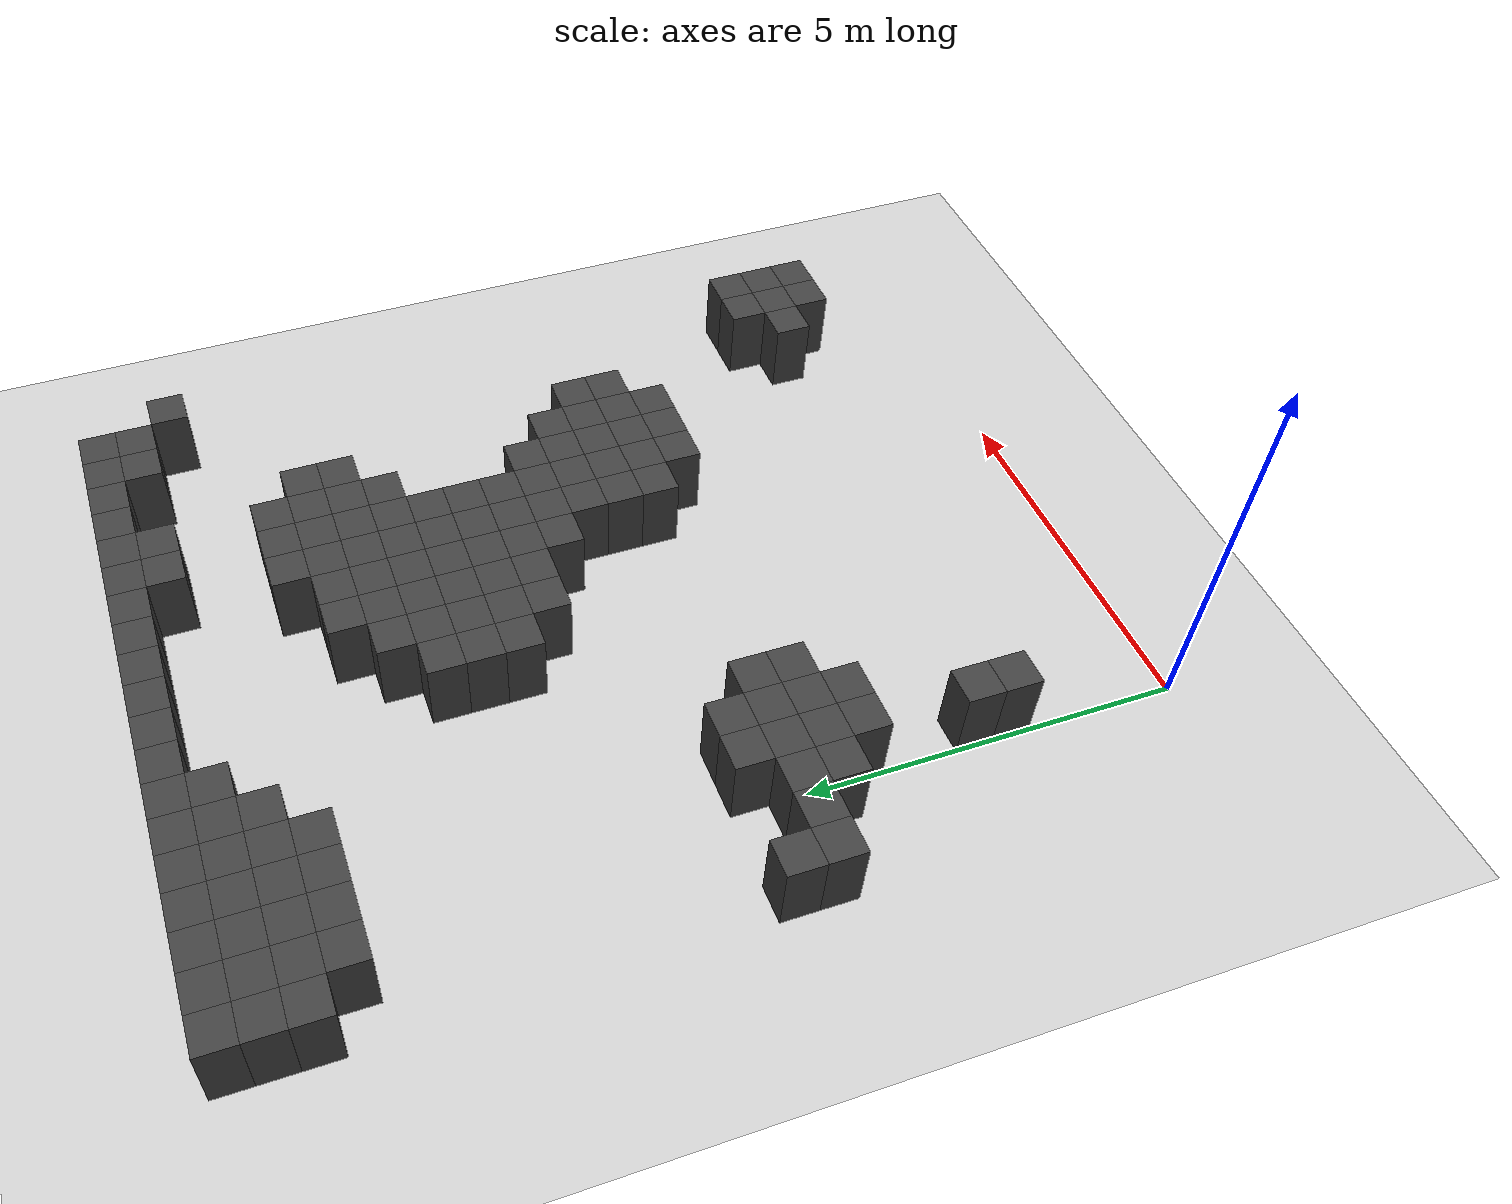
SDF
<sdf version="1.7">
 <world name="map_8658">
  <model name="ground_plane">
   <static>true</static>
   <link name="link">
    <collision name="collision">
     <geometry><plane><normal>0 0 1</normal><size>200 200</size></plane></geometry>
    </collision>
    <visual name="visual">
     <geometry><plane><normal>0 0 1</normal><size>200 200</size></plane></geometry>
     <material><ambient>0.8 0.8 0.8 1</ambient><diffuse>0.8 0.8 0.8 1</diffuse></material>
    </visual>
   </link>
  </model>
  <model name="maze_environment">
   <static>true</static>
   <link name="wall_22">
    <pose>-1.250 12.250 0.500 0 0 0</pose>
    <collision name="col"><geometry><box><size>0.5 0.5 1.0</size></box></geometry></collision>
    <visual name="vis">
     <geometry><box><size>0.5 0.5 1.0</size></box></geometry>
     <material><ambient>0.15 0.15 0.15 1</ambient><diffuse>0.25 0.25 0.25 1</diffuse></material>
    </visual>
   </link>
   <link name="wall_23">
    <pose>-0.750 12.250 0.500 0 0 0</pose>
    <collision name="col"><geometry><box><size>0.5 0.5 1.0</size></box></geometry></collision>
    <visual name="vis">
     <geometry><box><size>0.5 0.5 1.0</size></box></geometry>
     <material><ambient>0.15 0.15 0.15 1</ambient><diffuse>0.25 0.25 0.25 1</diffuse></material>
    </visual>
   </link>
   <link name="wall_24">
    <pose>-0.250 12.250 0.500 0 0 0</pose>
    <collision name="col"><geometry><box><size>0.5 0.5 1.0</size></box></geometry></collision>
    <visual name="vis">
     <geometry><box><size>0.5 0.5 1.0</size></box></geometry>
     <material><ambient>0.15 0.15 0.15 1</ambient><diffuse>0.25 0.25 0.25 1</diffuse></material>
    </visual>
   </link>
   <link name="wall_25">
    <pose>0.250 12.250 0.500 0 0 0</pose>
    <collision name="col"><geometry><box><size>0.5 0.5 1.0</size></box></geometry></collision>
    <visual name="vis">
     <geometry><box><size>0.5 0.5 1.0</size></box></geometry>
     <material><ambient>0.15 0.15 0.15 1</ambient><diffuse>0.25 0.25 0.25 1</diffuse></material>
    </visual>
   </link>
   <link name="wall_26">
    <pose>0.750 12.250 0.500 0 0 0</pose>
    <collision name="col"><geometry><box><size>0.5 0.5 1.0</size></box></geometry></collision>
    <visual name="vis">
     <geometry><box><size>0.5 0.5 1.0</size></box></geometry>
     <material><ambient>0.15 0.15 0.15 1</ambient><diffuse>0.25 0.25 0.25 1</diffuse></material>
    </visual>
   </link>
   <link name="wall_27">
    <pose>1.250 12.250 0.500 0 0 0</pose>
    <collision name="col"><geometry><box><size>0.5 0.5 1.0</size></box></geometry></collision>
    <visual name="vis">
     <geometry><box><size>0.5 0.5 1.0</size></box></geometry>
     <material><ambient>0.15 0.15 0.15 1</ambient><diffuse>0.25 0.25 0.25 1</diffuse></material>
    </visual>
   </link>
   <link name="wall_28">
    <pose>1.750 12.250 0.500 0 0 0</pose>
    <collision name="col"><geometry><box><size>0.5 0.5 1.0</size></box></geometry></collision>
    <visual name="vis">
     <geometry><box><size>0.5 0.5 1.0</size></box></geometry>
     <material><ambient>0.15 0.15 0.15 1</ambient><diffuse>0.25 0.25 0.25 1</diffuse></material>
    </visual>
   </link>
   <link name="wall_29">
    <pose>2.250 12.250 0.500 0 0 0</pose>
    <collision name="col"><geometry><box><size>0.5 0.5 1.0</size></box></geometry></collision>
    <visual name="vis">
     <geometry><box><size>0.5 0.5 1.0</size></box></geometry>
     <material><ambient>0.15 0.15 0.15 1</ambient><diffuse>0.25 0.25 0.25 1</diffuse></material>
    </visual>
   </link>
   <link name="wall_30">
    <pose>2.750 12.250 0.500 0 0 0</pose>
    <collision name="col"><geometry><box><size>0.5 0.5 1.0</size></box></geometry></collision>
    <visual name="vis">
     <geometry><box><size>0.5 0.5 1.0</size></box></geometry>
     <material><ambient>0.15 0.15 0.15 1</ambient><diffuse>0.25 0.25 0.25 1</diffuse></material>
    </visual>
   </link>
   <link name="wall_31">
    <pose>3.250 12.250 0.500 0 0 0</pose>
    <collision name="col"><geometry><box><size>0.5 0.5 1.0</size></box></geometry></collision>
    <visual name="vis">
     <geometry><box><size>0.5 0.5 1.0</size></box></geometry>
     <material><ambient>0.15 0.15 0.15 1</ambient><diffuse>0.25 0.25 0.25 1</diffuse></material>
    </visual>
   </link>
   <link name="wall_32">
    <pose>3.750 12.250 0.500 0 0 0</pose>
    <collision name="col"><geometry><box><size>0.5 0.5 1.0</size></box></geometry></collision>
    <visual name="vis">
     <geometry><box><size>0.5 0.5 1.0</size></box></geometry>
     <material><ambient>0.15 0.15 0.15 1</ambient><diffuse>0.25 0.25 0.25 1</diffuse></material>
    </visual>
   </link>
   <link name="wall_33">
    <pose>4.250 12.250 0.500 0 0 0</pose>
    <collision name="col"><geometry><box><size>0.5 0.5 1.0</size></box></geometry></collision>
    <visual name="vis">
     <geometry><box><size>0.5 0.5 1.0</size></box></geometry>
     <material><ambient>0.15 0.15 0.15 1</ambient><diffuse>0.25 0.25 0.25 1</diffuse></material>
    </visual>
   </link>
   <link name="wall_34">
    <pose>4.750 12.250 0.500 0 0 0</pose>
    <collision name="col"><geometry><box><size>0.5 0.5 1.0</size></box></geometry></collision>
    <visual name="vis">
     <geometry><box><size>0.5 0.5 1.0</size></box></geometry>
     <material><ambient>0.15 0.15 0.15 1</ambient><diffuse>0.25 0.25 0.25 1</diffuse></material>
    </visual>
   </link>
   <link name="wall_35">
    <pose>5.250 12.250 0.500 0 0 0</pose>
    <collision name="col"><geometry><box><size>0.5 0.5 1.0</size></box></geometry></collision>
    <visual name="vis">
     <geometry><box><size>0.5 0.5 1.0</size></box></geometry>
     <material><ambient>0.15 0.15 0.15 1</ambient><diffuse>0.25 0.25 0.25 1</diffuse></material>
    </visual>
   </link>
   <link name="wall_36">
    <pose>5.750 12.250 0.500 0 0 0</pose>
    <collision name="col"><geometry><box><size>0.5 0.5 1.0</size></box></geometry></collision>
    <visual name="vis">
     <geometry><box><size>0.5 0.5 1.0</size></box></geometry>
     <material><ambient>0.15 0.15 0.15 1</ambient><diffuse>0.25 0.25 0.25 1</diffuse></material>
    </visual>
   </link>
   <link name="wall_37">
    <pose>6.250 12.250 0.500 0 0 0</pose>
    <collision name="col"><geometry><box><size>0.5 0.5 1.0</size></box></geometry></collision>
    <visual name="vis">
     <geometry><box><size>0.5 0.5 1.0</size></box></geometry>
     <material><ambient>0.15 0.15 0.15 1</ambient><diffuse>0.25 0.25 0.25 1</diffuse></material>
    </visual>
   </link>
   <link name="wall_38">
    <pose>6.750 12.250 0.500 0 0 0</pose>
    <collision name="col"><geometry><box><size>0.5 0.5 1.0</size></box></geometry></collision>
    <visual name="vis">
     <geometry><box><size>0.5 0.5 1.0</size></box></geometry>
     <material><ambient>0.15 0.15 0.15 1</ambient><diffuse>0.25 0.25 0.25 1</diffuse></material>
    </visual>
   </link>
   <link name="wall_39">
    <pose>7.250 12.250 0.500 0 0 0</pose>
    <collision name="col"><geometry><box><size>0.5 0.5 1.0</size></box></geometry></collision>
    <visual name="vis">
     <geometry><box><size>0.5 0.5 1.0</size></box></geometry>
     <material><ambient>0.15 0.15 0.15 1</ambient><diffuse>0.25 0.25 0.25 1</diffuse></material>
    </visual>
   </link>
   <link name="wall_40">
    <pose>7.750 12.250 0.500 0 0 0</pose>
    <collision name="col"><geometry><box><size>0.5 0.5 1.0</size></box></geometry></collision>
    <visual name="vis">
     <geometry><box><size>0.5 0.5 1.0</size></box></geometry>
     <material><ambient>0.15 0.15 0.15 1</ambient><diffuse>0.25 0.25 0.25 1</diffuse></material>
    </visual>
   </link>
   <link name="wall_63">
    <pose>-1.250 11.750 0.500 0 0 0</pose>
    <collision name="col"><geometry><box><size>0.5 0.5 1.0</size></box></geometry></collision>
    <visual name="vis">
     <geometry><box><size>0.5 0.5 1.0</size></box></geometry>
     <material><ambient>0.15 0.15 0.15 1</ambient><diffuse>0.25 0.25 0.25 1</diffuse></material>
    </visual>
   </link>
   <link name="wall_64">
    <pose>-0.750 11.750 0.500 0 0 0</pose>
    <collision name="col"><geometry><box><size>0.5 0.5 1.0</size></box></geometry></collision>
    <visual name="vis">
     <geometry><box><size>0.5 0.5 1.0</size></box></geometry>
     <material><ambient>0.15 0.15 0.15 1</ambient><diffuse>0.25 0.25 0.25 1</diffuse></material>
    </visual>
   </link>
   <link name="wall_65">
    <pose>-0.250 11.750 0.500 0 0 0</pose>
    <collision name="col"><geometry><box><size>0.5 0.5 1.0</size></box></geometry></collision>
    <visual name="vis">
     <geometry><box><size>0.5 0.5 1.0</size></box></geometry>
     <material><ambient>0.15 0.15 0.15 1</ambient><diffuse>0.25 0.25 0.25 1</diffuse></material>
    </visual>
   </link>
   <link name="wall_66">
    <pose>0.250 11.750 0.500 0 0 0</pose>
    <collision name="col"><geometry><box><size>0.5 0.5 1.0</size></box></geometry></collision>
    <visual name="vis">
     <geometry><box><size>0.5 0.5 1.0</size></box></geometry>
     <material><ambient>0.15 0.15 0.15 1</ambient><diffuse>0.25 0.25 0.25 1</diffuse></material>
    </visual>
   </link>
   <link name="wall_67">
    <pose>0.750 11.750 0.500 0 0 0</pose>
    <collision name="col"><geometry><box><size>0.5 0.5 1.0</size></box></geometry></collision>
    <visual name="vis">
     <geometry><box><size>0.5 0.5 1.0</size></box></geometry>
     <material><ambient>0.15 0.15 0.15 1</ambient><diffuse>0.25 0.25 0.25 1</diffuse></material>
    </visual>
   </link>
   <link name="wall_68">
    <pose>1.250 11.750 0.500 0 0 0</pose>
    <collision name="col"><geometry><box><size>0.5 0.5 1.0</size></box></geometry></collision>
    <visual name="vis">
     <geometry><box><size>0.5 0.5 1.0</size></box></geometry>
     <material><ambient>0.15 0.15 0.15 1</ambient><diffuse>0.25 0.25 0.25 1</diffuse></material>
    </visual>
   </link>
   <link name="wall_69">
    <pose>1.750 11.750 0.500 0 0 0</pose>
    <collision name="col"><geometry><box><size>0.5 0.5 1.0</size></box></geometry></collision>
    <visual name="vis">
     <geometry><box><size>0.5 0.5 1.0</size></box></geometry>
     <material><ambient>0.15 0.15 0.15 1</ambient><diffuse>0.25 0.25 0.25 1</diffuse></material>
    </visual>
   </link>
   <link name="wall_70">
    <pose>5.250 11.750 0.500 0 0 0</pose>
    <collision name="col"><geometry><box><size>0.5 0.5 1.0</size></box></geometry></collision>
    <visual name="vis">
     <geometry><box><size>0.5 0.5 1.0</size></box></geometry>
     <material><ambient>0.15 0.15 0.15 1</ambient><diffuse>0.25 0.25 0.25 1</diffuse></material>
    </visual>
   </link>
   <link name="wall_71">
    <pose>5.750 11.750 0.500 0 0 0</pose>
    <collision name="col"><geometry><box><size>0.5 0.5 1.0</size></box></geometry></collision>
    <visual name="vis">
     <geometry><box><size>0.5 0.5 1.0</size></box></geometry>
     <material><ambient>0.15 0.15 0.15 1</ambient><diffuse>0.25 0.25 0.25 1</diffuse></material>
    </visual>
   </link>
   <link name="wall_72">
    <pose>7.250 11.750 0.500 0 0 0</pose>
    <collision name="col"><geometry><box><size>0.5 0.5 1.0</size></box></geometry></collision>
    <visual name="vis">
     <geometry><box><size>0.5 0.5 1.0</size></box></geometry>
     <material><ambient>0.15 0.15 0.15 1</ambient><diffuse>0.25 0.25 0.25 1</diffuse></material>
    </visual>
   </link>
   <link name="wall_73">
    <pose>7.750 11.750 0.500 0 0 0</pose>
    <collision name="col"><geometry><box><size>0.5 0.5 1.0</size></box></geometry></collision>
    <visual name="vis">
     <geometry><box><size>0.5 0.5 1.0</size></box></geometry>
     <material><ambient>0.15 0.15 0.15 1</ambient><diffuse>0.25 0.25 0.25 1</diffuse></material>
    </visual>
   </link>
   <link name="wall_91">
    <pose>-1.250 11.250 0.500 0 0 0</pose>
    <collision name="col"><geometry><box><size>0.5 0.5 1.0</size></box></geometry></collision>
    <visual name="vis">
     <geometry><box><size>0.5 0.5 1.0</size></box></geometry>
     <material><ambient>0.15 0.15 0.15 1</ambient><diffuse>0.25 0.25 0.25 1</diffuse></material>
    </visual>
   </link>
   <link name="wall_92">
    <pose>-0.750 11.250 0.500 0 0 0</pose>
    <collision name="col"><geometry><box><size>0.5 0.5 1.0</size></box></geometry></collision>
    <visual name="vis">
     <geometry><box><size>0.5 0.5 1.0</size></box></geometry>
     <material><ambient>0.15 0.15 0.15 1</ambient><diffuse>0.25 0.25 0.25 1</diffuse></material>
    </visual>
   </link>
   <link name="wall_93">
    <pose>-0.250 11.250 0.500 0 0 0</pose>
    <collision name="col"><geometry><box><size>0.5 0.5 1.0</size></box></geometry></collision>
    <visual name="vis">
     <geometry><box><size>0.5 0.5 1.0</size></box></geometry>
     <material><ambient>0.15 0.15 0.15 1</ambient><diffuse>0.25 0.25 0.25 1</diffuse></material>
    </visual>
   </link>
   <link name="wall_94">
    <pose>0.250 11.250 0.500 0 0 0</pose>
    <collision name="col"><geometry><box><size>0.5 0.5 1.0</size></box></geometry></collision>
    <visual name="vis">
     <geometry><box><size>0.5 0.5 1.0</size></box></geometry>
     <material><ambient>0.15 0.15 0.15 1</ambient><diffuse>0.25 0.25 0.25 1</diffuse></material>
    </visual>
   </link>
   <link name="wall_95">
    <pose>0.750 11.250 0.500 0 0 0</pose>
    <collision name="col"><geometry><box><size>0.5 0.5 1.0</size></box></geometry></collision>
    <visual name="vis">
     <geometry><box><size>0.5 0.5 1.0</size></box></geometry>
     <material><ambient>0.15 0.15 0.15 1</ambient><diffuse>0.25 0.25 0.25 1</diffuse></material>
    </visual>
   </link>
   <link name="wall_96">
    <pose>1.250 11.250 0.500 0 0 0</pose>
    <collision name="col"><geometry><box><size>0.5 0.5 1.0</size></box></geometry></collision>
    <visual name="vis">
     <geometry><box><size>0.5 0.5 1.0</size></box></geometry>
     <material><ambient>0.15 0.15 0.15 1</ambient><diffuse>0.25 0.25 0.25 1</diffuse></material>
    </visual>
   </link>
   <link name="wall_97">
    <pose>8.250 11.250 0.500 0 0 0</pose>
    <collision name="col"><geometry><box><size>0.5 0.5 1.0</size></box></geometry></collision>
    <visual name="vis">
     <geometry><box><size>0.5 0.5 1.0</size></box></geometry>
     <material><ambient>0.15 0.15 0.15 1</ambient><diffuse>0.25 0.25 0.25 1</diffuse></material>
    </visual>
   </link>
   <link name="wall_111">
    <pose>-0.750 10.750 0.500 0 0 0</pose>
    <collision name="col"><geometry><box><size>0.5 0.5 1.0</size></box></geometry></collision>
    <visual name="vis">
     <geometry><box><size>0.5 0.5 1.0</size></box></geometry>
     <material><ambient>0.15 0.15 0.15 1</ambient><diffuse>0.25 0.25 0.25 1</diffuse></material>
    </visual>
   </link>
   <link name="wall_112">
    <pose>-0.250 10.750 0.500 0 0 0</pose>
    <collision name="col"><geometry><box><size>0.5 0.5 1.0</size></box></geometry></collision>
    <visual name="vis">
     <geometry><box><size>0.5 0.5 1.0</size></box></geometry>
     <material><ambient>0.15 0.15 0.15 1</ambient><diffuse>0.25 0.25 0.25 1</diffuse></material>
    </visual>
   </link>
   <link name="wall_113">
    <pose>0.250 10.750 0.500 0 0 0</pose>
    <collision name="col"><geometry><box><size>0.5 0.5 1.0</size></box></geometry></collision>
    <visual name="vis">
     <geometry><box><size>0.5 0.5 1.0</size></box></geometry>
     <material><ambient>0.15 0.15 0.15 1</ambient><diffuse>0.25 0.25 0.25 1</diffuse></material>
    </visual>
   </link>
   <link name="wall_114">
    <pose>0.750 10.750 0.500 0 0 0</pose>
    <collision name="col"><geometry><box><size>0.5 0.5 1.0</size></box></geometry></collision>
    <visual name="vis">
     <geometry><box><size>0.5 0.5 1.0</size></box></geometry>
     <material><ambient>0.15 0.15 0.15 1</ambient><diffuse>0.25 0.25 0.25 1</diffuse></material>
    </visual>
   </link>
   <link name="wall_126">
    <pose>4.750 10.250 0.500 0 0 0</pose>
    <collision name="col"><geometry><box><size>0.5 0.5 1.0</size></box></geometry></collision>
    <visual name="vis">
     <geometry><box><size>0.5 0.5 1.0</size></box></geometry>
     <material><ambient>0.15 0.15 0.15 1</ambient><diffuse>0.25 0.25 0.25 1</diffuse></material>
    </visual>
   </link>
   <link name="wall_127">
    <pose>5.250 10.250 0.500 0 0 0</pose>
    <collision name="col"><geometry><box><size>0.5 0.5 1.0</size></box></geometry></collision>
    <visual name="vis">
     <geometry><box><size>0.5 0.5 1.0</size></box></geometry>
     <material><ambient>0.15 0.15 0.15 1</ambient><diffuse>0.25 0.25 0.25 1</diffuse></material>
    </visual>
   </link>
   <link name="wall_128">
    <pose>5.750 10.250 0.500 0 0 0</pose>
    <collision name="col"><geometry><box><size>0.5 0.5 1.0</size></box></geometry></collision>
    <visual name="vis">
     <geometry><box><size>0.5 0.5 1.0</size></box></geometry>
     <material><ambient>0.15 0.15 0.15 1</ambient><diffuse>0.25 0.25 0.25 1</diffuse></material>
    </visual>
   </link>
   <link name="wall_139">
    <pose>3.750 9.750 0.500 0 0 0</pose>
    <collision name="col"><geometry><box><size>0.5 0.5 1.0</size></box></geometry></collision>
    <visual name="vis">
     <geometry><box><size>0.5 0.5 1.0</size></box></geometry>
     <material><ambient>0.15 0.15 0.15 1</ambient><diffuse>0.25 0.25 0.25 1</diffuse></material>
    </visual>
   </link>
   <link name="wall_140">
    <pose>4.250 9.750 0.500 0 0 0</pose>
    <collision name="col"><geometry><box><size>0.5 0.5 1.0</size></box></geometry></collision>
    <visual name="vis">
     <geometry><box><size>0.5 0.5 1.0</size></box></geometry>
     <material><ambient>0.15 0.15 0.15 1</ambient><diffuse>0.25 0.25 0.25 1</diffuse></material>
    </visual>
   </link>
   <link name="wall_141">
    <pose>4.750 9.750 0.500 0 0 0</pose>
    <collision name="col"><geometry><box><size>0.5 0.5 1.0</size></box></geometry></collision>
    <visual name="vis">
     <geometry><box><size>0.5 0.5 1.0</size></box></geometry>
     <material><ambient>0.15 0.15 0.15 1</ambient><diffuse>0.25 0.25 0.25 1</diffuse></material>
    </visual>
   </link>
   <link name="wall_142">
    <pose>5.250 9.750 0.500 0 0 0</pose>
    <collision name="col"><geometry><box><size>0.5 0.5 1.0</size></box></geometry></collision>
    <visual name="vis">
     <geometry><box><size>0.5 0.5 1.0</size></box></geometry>
     <material><ambient>0.15 0.15 0.15 1</ambient><diffuse>0.25 0.25 0.25 1</diffuse></material>
    </visual>
   </link>
   <link name="wall_143">
    <pose>5.750 9.750 0.500 0 0 0</pose>
    <collision name="col"><geometry><box><size>0.5 0.5 1.0</size></box></geometry></collision>
    <visual name="vis">
     <geometry><box><size>0.5 0.5 1.0</size></box></geometry>
     <material><ambient>0.15 0.15 0.15 1</ambient><diffuse>0.25 0.25 0.25 1</diffuse></material>
    </visual>
   </link>
   <link name="wall_144">
    <pose>6.250 9.750 0.500 0 0 0</pose>
    <collision name="col"><geometry><box><size>0.5 0.5 1.0</size></box></geometry></collision>
    <visual name="vis">
     <geometry><box><size>0.5 0.5 1.0</size></box></geometry>
     <material><ambient>0.15 0.15 0.15 1</ambient><diffuse>0.25 0.25 0.25 1</diffuse></material>
    </visual>
   </link>
   <link name="wall_158">
    <pose>3.250 9.250 0.500 0 0 0</pose>
    <collision name="col"><geometry><box><size>0.5 0.5 1.0</size></box></geometry></collision>
    <visual name="vis">
     <geometry><box><size>0.5 0.5 1.0</size></box></geometry>
     <material><ambient>0.15 0.15 0.15 1</ambient><diffuse>0.25 0.25 0.25 1</diffuse></material>
    </visual>
   </link>
   <link name="wall_159">
    <pose>3.750 9.250 0.500 0 0 0</pose>
    <collision name="col"><geometry><box><size>0.5 0.5 1.0</size></box></geometry></collision>
    <visual name="vis">
     <geometry><box><size>0.5 0.5 1.0</size></box></geometry>
     <material><ambient>0.15 0.15 0.15 1</ambient><diffuse>0.25 0.25 0.25 1</diffuse></material>
    </visual>
   </link>
   <link name="wall_160">
    <pose>4.250 9.250 0.500 0 0 0</pose>
    <collision name="col"><geometry><box><size>0.5 0.5 1.0</size></box></geometry></collision>
    <visual name="vis">
     <geometry><box><size>0.5 0.5 1.0</size></box></geometry>
     <material><ambient>0.15 0.15 0.15 1</ambient><diffuse>0.25 0.25 0.25 1</diffuse></material>
    </visual>
   </link>
   <link name="wall_161">
    <pose>4.750 9.250 0.500 0 0 0</pose>
    <collision name="col"><geometry><box><size>0.5 0.5 1.0</size></box></geometry></collision>
    <visual name="vis">
     <geometry><box><size>0.5 0.5 1.0</size></box></geometry>
     <material><ambient>0.15 0.15 0.15 1</ambient><diffuse>0.25 0.25 0.25 1</diffuse></material>
    </visual>
   </link>
   <link name="wall_162">
    <pose>5.250 9.250 0.500 0 0 0</pose>
    <collision name="col"><geometry><box><size>0.5 0.5 1.0</size></box></geometry></collision>
    <visual name="vis">
     <geometry><box><size>0.5 0.5 1.0</size></box></geometry>
     <material><ambient>0.15 0.15 0.15 1</ambient><diffuse>0.25 0.25 0.25 1</diffuse></material>
    </visual>
   </link>
   <link name="wall_163">
    <pose>5.750 9.250 0.500 0 0 0</pose>
    <collision name="col"><geometry><box><size>0.5 0.5 1.0</size></box></geometry></collision>
    <visual name="vis">
     <geometry><box><size>0.5 0.5 1.0</size></box></geometry>
     <material><ambient>0.15 0.15 0.15 1</ambient><diffuse>0.25 0.25 0.25 1</diffuse></material>
    </visual>
   </link>
   <link name="wall_164">
    <pose>6.250 9.250 0.500 0 0 0</pose>
    <collision name="col"><geometry><box><size>0.5 0.5 1.0</size></box></geometry></collision>
    <visual name="vis">
     <geometry><box><size>0.5 0.5 1.0</size></box></geometry>
     <material><ambient>0.15 0.15 0.15 1</ambient><diffuse>0.25 0.25 0.25 1</diffuse></material>
    </visual>
   </link>
   <link name="wall_177">
    <pose>2.750 8.750 0.500 0 0 0</pose>
    <collision name="col"><geometry><box><size>0.5 0.5 1.0</size></box></geometry></collision>
    <visual name="vis">
     <geometry><box><size>0.5 0.5 1.0</size></box></geometry>
     <material><ambient>0.15 0.15 0.15 1</ambient><diffuse>0.25 0.25 0.25 1</diffuse></material>
    </visual>
   </link>
   <link name="wall_178">
    <pose>3.250 8.750 0.500 0 0 0</pose>
    <collision name="col"><geometry><box><size>0.5 0.5 1.0</size></box></geometry></collision>
    <visual name="vis">
     <geometry><box><size>0.5 0.5 1.0</size></box></geometry>
     <material><ambient>0.15 0.15 0.15 1</ambient><diffuse>0.25 0.25 0.25 1</diffuse></material>
    </visual>
   </link>
   <link name="wall_179">
    <pose>3.750 8.750 0.500 0 0 0</pose>
    <collision name="col"><geometry><box><size>0.5 0.5 1.0</size></box></geometry></collision>
    <visual name="vis">
     <geometry><box><size>0.5 0.5 1.0</size></box></geometry>
     <material><ambient>0.15 0.15 0.15 1</ambient><diffuse>0.25 0.25 0.25 1</diffuse></material>
    </visual>
   </link>
   <link name="wall_180">
    <pose>4.250 8.750 0.500 0 0 0</pose>
    <collision name="col"><geometry><box><size>0.5 0.5 1.0</size></box></geometry></collision>
    <visual name="vis">
     <geometry><box><size>0.5 0.5 1.0</size></box></geometry>
     <material><ambient>0.15 0.15 0.15 1</ambient><diffuse>0.25 0.25 0.25 1</diffuse></material>
    </visual>
   </link>
   <link name="wall_181">
    <pose>4.750 8.750 0.500 0 0 0</pose>
    <collision name="col"><geometry><box><size>0.5 0.5 1.0</size></box></geometry></collision>
    <visual name="vis">
     <geometry><box><size>0.5 0.5 1.0</size></box></geometry>
     <material><ambient>0.15 0.15 0.15 1</ambient><diffuse>0.25 0.25 0.25 1</diffuse></material>
    </visual>
   </link>
   <link name="wall_182">
    <pose>5.250 8.750 0.500 0 0 0</pose>
    <collision name="col"><geometry><box><size>0.5 0.5 1.0</size></box></geometry></collision>
    <visual name="vis">
     <geometry><box><size>0.5 0.5 1.0</size></box></geometry>
     <material><ambient>0.15 0.15 0.15 1</ambient><diffuse>0.25 0.25 0.25 1</diffuse></material>
    </visual>
   </link>
   <link name="wall_183">
    <pose>5.750 8.750 0.500 0 0 0</pose>
    <collision name="col"><geometry><box><size>0.5 0.5 1.0</size></box></geometry></collision>
    <visual name="vis">
     <geometry><box><size>0.5 0.5 1.0</size></box></geometry>
     <material><ambient>0.15 0.15 0.15 1</ambient><diffuse>0.25 0.25 0.25 1</diffuse></material>
    </visual>
   </link>
   <link name="wall_200">
    <pose>2.750 8.250 0.500 0 0 0</pose>
    <collision name="col"><geometry><box><size>0.5 0.5 1.0</size></box></geometry></collision>
    <visual name="vis">
     <geometry><box><size>0.5 0.5 1.0</size></box></geometry>
     <material><ambient>0.15 0.15 0.15 1</ambient><diffuse>0.25 0.25 0.25 1</diffuse></material>
    </visual>
   </link>
   <link name="wall_201">
    <pose>3.250 8.250 0.500 0 0 0</pose>
    <collision name="col"><geometry><box><size>0.5 0.5 1.0</size></box></geometry></collision>
    <visual name="vis">
     <geometry><box><size>0.5 0.5 1.0</size></box></geometry>
     <material><ambient>0.15 0.15 0.15 1</ambient><diffuse>0.25 0.25 0.25 1</diffuse></material>
    </visual>
   </link>
   <link name="wall_202">
    <pose>3.750 8.250 0.500 0 0 0</pose>
    <collision name="col"><geometry><box><size>0.5 0.5 1.0</size></box></geometry></collision>
    <visual name="vis">
     <geometry><box><size>0.5 0.5 1.0</size></box></geometry>
     <material><ambient>0.15 0.15 0.15 1</ambient><diffuse>0.25 0.25 0.25 1</diffuse></material>
    </visual>
   </link>
   <link name="wall_203">
    <pose>4.250 8.250 0.500 0 0 0</pose>
    <collision name="col"><geometry><box><size>0.5 0.5 1.0</size></box></geometry></collision>
    <visual name="vis">
     <geometry><box><size>0.5 0.5 1.0</size></box></geometry>
     <material><ambient>0.15 0.15 0.15 1</ambient><diffuse>0.25 0.25 0.25 1</diffuse></material>
    </visual>
   </link>
   <link name="wall_204">
    <pose>4.750 8.250 0.500 0 0 0</pose>
    <collision name="col"><geometry><box><size>0.5 0.5 1.0</size></box></geometry></collision>
    <visual name="vis">
     <geometry><box><size>0.5 0.5 1.0</size></box></geometry>
     <material><ambient>0.15 0.15 0.15 1</ambient><diffuse>0.25 0.25 0.25 1</diffuse></material>
    </visual>
   </link>
   <link name="wall_205">
    <pose>5.250 8.250 0.500 0 0 0</pose>
    <collision name="col"><geometry><box><size>0.5 0.5 1.0</size></box></geometry></collision>
    <visual name="vis">
     <geometry><box><size>0.5 0.5 1.0</size></box></geometry>
     <material><ambient>0.15 0.15 0.15 1</ambient><diffuse>0.25 0.25 0.25 1</diffuse></material>
    </visual>
   </link>
   <link name="wall_222">
    <pose>2.750 7.750 0.500 0 0 0</pose>
    <collision name="col"><geometry><box><size>0.5 0.5 1.0</size></box></geometry></collision>
    <visual name="vis">
     <geometry><box><size>0.5 0.5 1.0</size></box></geometry>
     <material><ambient>0.15 0.15 0.15 1</ambient><diffuse>0.25 0.25 0.25 1</diffuse></material>
    </visual>
   </link>
   <link name="wall_223">
    <pose>3.250 7.750 0.500 0 0 0</pose>
    <collision name="col"><geometry><box><size>0.5 0.5 1.0</size></box></geometry></collision>
    <visual name="vis">
     <geometry><box><size>0.5 0.5 1.0</size></box></geometry>
     <material><ambient>0.15 0.15 0.15 1</ambient><diffuse>0.25 0.25 0.25 1</diffuse></material>
    </visual>
   </link>
   <link name="wall_224">
    <pose>3.750 7.750 0.500 0 0 0</pose>
    <collision name="col"><geometry><box><size>0.5 0.5 1.0</size></box></geometry></collision>
    <visual name="vis">
     <geometry><box><size>0.5 0.5 1.0</size></box></geometry>
     <material><ambient>0.15 0.15 0.15 1</ambient><diffuse>0.25 0.25 0.25 1</diffuse></material>
    </visual>
   </link>
   <link name="wall_225">
    <pose>4.250 7.750 0.500 0 0 0</pose>
    <collision name="col"><geometry><box><size>0.5 0.5 1.0</size></box></geometry></collision>
    <visual name="vis">
     <geometry><box><size>0.5 0.5 1.0</size></box></geometry>
     <material><ambient>0.15 0.15 0.15 1</ambient><diffuse>0.25 0.25 0.25 1</diffuse></material>
    </visual>
   </link>
   <link name="wall_226">
    <pose>4.750 7.750 0.500 0 0 0</pose>
    <collision name="col"><geometry><box><size>0.5 0.5 1.0</size></box></geometry></collision>
    <visual name="vis">
     <geometry><box><size>0.5 0.5 1.0</size></box></geometry>
     <material><ambient>0.15 0.15 0.15 1</ambient><diffuse>0.25 0.25 0.25 1</diffuse></material>
    </visual>
   </link>
   <link name="wall_227">
    <pose>5.250 7.750 0.500 0 0 0</pose>
    <collision name="col"><geometry><box><size>0.5 0.5 1.0</size></box></geometry></collision>
    <visual name="vis">
     <geometry><box><size>0.5 0.5 1.0</size></box></geometry>
     <material><ambient>0.15 0.15 0.15 1</ambient><diffuse>0.25 0.25 0.25 1</diffuse></material>
    </visual>
   </link>
   <link name="wall_243">
    <pose>3.250 7.250 0.500 0 0 0</pose>
    <collision name="col"><geometry><box><size>0.5 0.5 1.0</size></box></geometry></collision>
    <visual name="vis">
     <geometry><box><size>0.5 0.5 1.0</size></box></geometry>
     <material><ambient>0.15 0.15 0.15 1</ambient><diffuse>0.25 0.25 0.25 1</diffuse></material>
    </visual>
   </link>
   <link name="wall_244">
    <pose>3.750 7.250 0.500 0 0 0</pose>
    <collision name="col"><geometry><box><size>0.5 0.5 1.0</size></box></geometry></collision>
    <visual name="vis">
     <geometry><box><size>0.5 0.5 1.0</size></box></geometry>
     <material><ambient>0.15 0.15 0.15 1</ambient><diffuse>0.25 0.25 0.25 1</diffuse></material>
    </visual>
   </link>
   <link name="wall_245">
    <pose>4.250 7.250 0.500 0 0 0</pose>
    <collision name="col"><geometry><box><size>0.5 0.5 1.0</size></box></geometry></collision>
    <visual name="vis">
     <geometry><box><size>0.5 0.5 1.0</size></box></geometry>
     <material><ambient>0.15 0.15 0.15 1</ambient><diffuse>0.25 0.25 0.25 1</diffuse></material>
    </visual>
   </link>
   <link name="wall_246">
    <pose>4.750 7.250 0.500 0 0 0</pose>
    <collision name="col"><geometry><box><size>0.5 0.5 1.0</size></box></geometry></collision>
    <visual name="vis">
     <geometry><box><size>0.5 0.5 1.0</size></box></geometry>
     <material><ambient>0.15 0.15 0.15 1</ambient><diffuse>0.25 0.25 0.25 1</diffuse></material>
    </visual>
   </link>
   <link name="wall_247">
    <pose>5.250 7.250 0.500 0 0 0</pose>
    <collision name="col"><geometry><box><size>0.5 0.5 1.0</size></box></geometry></collision>
    <visual name="vis">
     <geometry><box><size>0.5 0.5 1.0</size></box></geometry>
     <material><ambient>0.15 0.15 0.15 1</ambient><diffuse>0.25 0.25 0.25 1</diffuse></material>
    </visual>
   </link>
   <link name="wall_260">
    <pose>4.250 6.750 0.500 0 0 0</pose>
    <collision name="col"><geometry><box><size>0.5 0.5 1.0</size></box></geometry></collision>
    <visual name="vis">
     <geometry><box><size>0.5 0.5 1.0</size></box></geometry>
     <material><ambient>0.15 0.15 0.15 1</ambient><diffuse>0.25 0.25 0.25 1</diffuse></material>
    </visual>
   </link>
   <link name="wall_261">
    <pose>4.750 6.750 0.500 0 0 0</pose>
    <collision name="col"><geometry><box><size>0.5 0.5 1.0</size></box></geometry></collision>
    <visual name="vis">
     <geometry><box><size>0.5 0.5 1.0</size></box></geometry>
     <material><ambient>0.15 0.15 0.15 1</ambient><diffuse>0.25 0.25 0.25 1</diffuse></material>
    </visual>
   </link>
   <link name="wall_262">
    <pose>5.250 6.750 0.500 0 0 0</pose>
    <collision name="col"><geometry><box><size>0.5 0.5 1.0</size></box></geometry></collision>
    <visual name="vis">
     <geometry><box><size>0.5 0.5 1.0</size></box></geometry>
     <material><ambient>0.15 0.15 0.15 1</ambient><diffuse>0.25 0.25 0.25 1</diffuse></material>
    </visual>
   </link>
   <link name="wall_263">
    <pose>5.750 6.750 0.500 0 0 0</pose>
    <collision name="col"><geometry><box><size>0.5 0.5 1.0</size></box></geometry></collision>
    <visual name="vis">
     <geometry><box><size>0.5 0.5 1.0</size></box></geometry>
     <material><ambient>0.15 0.15 0.15 1</ambient><diffuse>0.25 0.25 0.25 1</diffuse></material>
    </visual>
   </link>
   <link name="wall_279">
    <pose>4.750 6.250 0.500 0 0 0</pose>
    <collision name="col"><geometry><box><size>0.5 0.5 1.0</size></box></geometry></collision>
    <visual name="vis">
     <geometry><box><size>0.5 0.5 1.0</size></box></geometry>
     <material><ambient>0.15 0.15 0.15 1</ambient><diffuse>0.25 0.25 0.25 1</diffuse></material>
    </visual>
   </link>
   <link name="wall_280">
    <pose>5.250 6.250 0.500 0 0 0</pose>
    <collision name="col"><geometry><box><size>0.5 0.5 1.0</size></box></geometry></collision>
    <visual name="vis">
     <geometry><box><size>0.5 0.5 1.0</size></box></geometry>
     <material><ambient>0.15 0.15 0.15 1</ambient><diffuse>0.25 0.25 0.25 1</diffuse></material>
    </visual>
   </link>
   <link name="wall_281">
    <pose>5.750 6.250 0.500 0 0 0</pose>
    <collision name="col"><geometry><box><size>0.5 0.5 1.0</size></box></geometry></collision>
    <visual name="vis">
     <geometry><box><size>0.5 0.5 1.0</size></box></geometry>
     <material><ambient>0.15 0.15 0.15 1</ambient><diffuse>0.25 0.25 0.25 1</diffuse></material>
    </visual>
   </link>
   <link name="wall_282">
    <pose>6.250 6.250 0.500 0 0 0</pose>
    <collision name="col"><geometry><box><size>0.5 0.5 1.0</size></box></geometry></collision>
    <visual name="vis">
     <geometry><box><size>0.5 0.5 1.0</size></box></geometry>
     <material><ambient>0.15 0.15 0.15 1</ambient><diffuse>0.25 0.25 0.25 1</diffuse></material>
    </visual>
   </link>
   <link name="wall_300">
    <pose>-1.250 5.750 0.500 0 0 0</pose>
    <collision name="col"><geometry><box><size>0.5 0.5 1.0</size></box></geometry></collision>
    <visual name="vis">
     <geometry><box><size>0.5 0.5 1.0</size></box></geometry>
     <material><ambient>0.15 0.15 0.15 1</ambient><diffuse>0.25 0.25 0.25 1</diffuse></material>
    </visual>
   </link>
   <link name="wall_301">
    <pose>0.250 5.750 0.500 0 0 0</pose>
    <collision name="col"><geometry><box><size>0.5 0.5 1.0</size></box></geometry></collision>
    <visual name="vis">
     <geometry><box><size>0.5 0.5 1.0</size></box></geometry>
     <material><ambient>0.15 0.15 0.15 1</ambient><diffuse>0.25 0.25 0.25 1</diffuse></material>
    </visual>
   </link>
   <link name="wall_302">
    <pose>0.750 5.750 0.500 0 0 0</pose>
    <collision name="col"><geometry><box><size>0.5 0.5 1.0</size></box></geometry></collision>
    <visual name="vis">
     <geometry><box><size>0.5 0.5 1.0</size></box></geometry>
     <material><ambient>0.15 0.15 0.15 1</ambient><diffuse>0.25 0.25 0.25 1</diffuse></material>
    </visual>
   </link>
   <link name="wall_303">
    <pose>4.750 5.750 0.500 0 0 0</pose>
    <collision name="col"><geometry><box><size>0.5 0.5 1.0</size></box></geometry></collision>
    <visual name="vis">
     <geometry><box><size>0.5 0.5 1.0</size></box></geometry>
     <material><ambient>0.15 0.15 0.15 1</ambient><diffuse>0.25 0.25 0.25 1</diffuse></material>
    </visual>
   </link>
   <link name="wall_304">
    <pose>5.250 5.750 0.500 0 0 0</pose>
    <collision name="col"><geometry><box><size>0.5 0.5 1.0</size></box></geometry></collision>
    <visual name="vis">
     <geometry><box><size>0.5 0.5 1.0</size></box></geometry>
     <material><ambient>0.15 0.15 0.15 1</ambient><diffuse>0.25 0.25 0.25 1</diffuse></material>
    </visual>
   </link>
   <link name="wall_305">
    <pose>5.750 5.750 0.500 0 0 0</pose>
    <collision name="col"><geometry><box><size>0.5 0.5 1.0</size></box></geometry></collision>
    <visual name="vis">
     <geometry><box><size>0.5 0.5 1.0</size></box></geometry>
     <material><ambient>0.15 0.15 0.15 1</ambient><diffuse>0.25 0.25 0.25 1</diffuse></material>
    </visual>
   </link>
   <link name="wall_306">
    <pose>6.250 5.750 0.500 0 0 0</pose>
    <collision name="col"><geometry><box><size>0.5 0.5 1.0</size></box></geometry></collision>
    <visual name="vis">
     <geometry><box><size>0.5 0.5 1.0</size></box></geometry>
     <material><ambient>0.15 0.15 0.15 1</ambient><diffuse>0.25 0.25 0.25 1</diffuse></material>
    </visual>
   </link>
   <link name="wall_307">
    <pose>6.750 5.750 0.500 0 0 0</pose>
    <collision name="col"><geometry><box><size>0.5 0.5 1.0</size></box></geometry></collision>
    <visual name="vis">
     <geometry><box><size>0.5 0.5 1.0</size></box></geometry>
     <material><ambient>0.15 0.15 0.15 1</ambient><diffuse>0.25 0.25 0.25 1</diffuse></material>
    </visual>
   </link>
   <link name="wall_330">
    <pose>-1.250 5.250 0.500 0 0 0</pose>
    <collision name="col"><geometry><box><size>0.5 0.5 1.0</size></box></geometry></collision>
    <visual name="vis">
     <geometry><box><size>0.5 0.5 1.0</size></box></geometry>
     <material><ambient>0.15 0.15 0.15 1</ambient><diffuse>0.25 0.25 0.25 1</diffuse></material>
    </visual>
   </link>
   <link name="wall_331">
    <pose>-0.750 5.250 0.500 0 0 0</pose>
    <collision name="col"><geometry><box><size>0.5 0.5 1.0</size></box></geometry></collision>
    <visual name="vis">
     <geometry><box><size>0.5 0.5 1.0</size></box></geometry>
     <material><ambient>0.15 0.15 0.15 1</ambient><diffuse>0.25 0.25 0.25 1</diffuse></material>
    </visual>
   </link>
   <link name="wall_332">
    <pose>-0.250 5.250 0.500 0 0 0</pose>
    <collision name="col"><geometry><box><size>0.5 0.5 1.0</size></box></geometry></collision>
    <visual name="vis">
     <geometry><box><size>0.5 0.5 1.0</size></box></geometry>
     <material><ambient>0.15 0.15 0.15 1</ambient><diffuse>0.25 0.25 0.25 1</diffuse></material>
    </visual>
   </link>
   <link name="wall_333">
    <pose>0.250 5.250 0.500 0 0 0</pose>
    <collision name="col"><geometry><box><size>0.5 0.5 1.0</size></box></geometry></collision>
    <visual name="vis">
     <geometry><box><size>0.5 0.5 1.0</size></box></geometry>
     <material><ambient>0.15 0.15 0.15 1</ambient><diffuse>0.25 0.25 0.25 1</diffuse></material>
    </visual>
   </link>
   <link name="wall_334">
    <pose>0.750 5.250 0.500 0 0 0</pose>
    <collision name="col"><geometry><box><size>0.5 0.5 1.0</size></box></geometry></collision>
    <visual name="vis">
     <geometry><box><size>0.5 0.5 1.0</size></box></geometry>
     <material><ambient>0.15 0.15 0.15 1</ambient><diffuse>0.25 0.25 0.25 1</diffuse></material>
    </visual>
   </link>
   <link name="wall_335">
    <pose>1.250 5.250 0.500 0 0 0</pose>
    <collision name="col"><geometry><box><size>0.5 0.5 1.0</size></box></geometry></collision>
    <visual name="vis">
     <geometry><box><size>0.5 0.5 1.0</size></box></geometry>
     <material><ambient>0.15 0.15 0.15 1</ambient><diffuse>0.25 0.25 0.25 1</diffuse></material>
    </visual>
   </link>
   <link name="wall_336">
    <pose>4.750 5.250 0.500 0 0 0</pose>
    <collision name="col"><geometry><box><size>0.5 0.5 1.0</size></box></geometry></collision>
    <visual name="vis">
     <geometry><box><size>0.5 0.5 1.0</size></box></geometry>
     <material><ambient>0.15 0.15 0.15 1</ambient><diffuse>0.25 0.25 0.25 1</diffuse></material>
    </visual>
   </link>
   <link name="wall_337">
    <pose>5.250 5.250 0.500 0 0 0</pose>
    <collision name="col"><geometry><box><size>0.5 0.5 1.0</size></box></geometry></collision>
    <visual name="vis">
     <geometry><box><size>0.5 0.5 1.0</size></box></geometry>
     <material><ambient>0.15 0.15 0.15 1</ambient><diffuse>0.25 0.25 0.25 1</diffuse></material>
    </visual>
   </link>
   <link name="wall_338">
    <pose>5.750 5.250 0.500 0 0 0</pose>
    <collision name="col"><geometry><box><size>0.5 0.5 1.0</size></box></geometry></collision>
    <visual name="vis">
     <geometry><box><size>0.5 0.5 1.0</size></box></geometry>
     <material><ambient>0.15 0.15 0.15 1</ambient><diffuse>0.25 0.25 0.25 1</diffuse></material>
    </visual>
   </link>
   <link name="wall_339">
    <pose>6.250 5.250 0.500 0 0 0</pose>
    <collision name="col"><geometry><box><size>0.5 0.5 1.0</size></box></geometry></collision>
    <visual name="vis">
     <geometry><box><size>0.5 0.5 1.0</size></box></geometry>
     <material><ambient>0.15 0.15 0.15 1</ambient><diffuse>0.25 0.25 0.25 1</diffuse></material>
    </visual>
   </link>
   <link name="wall_340">
    <pose>6.750 5.250 0.500 0 0 0</pose>
    <collision name="col"><geometry><box><size>0.5 0.5 1.0</size></box></geometry></collision>
    <visual name="vis">
     <geometry><box><size>0.5 0.5 1.0</size></box></geometry>
     <material><ambient>0.15 0.15 0.15 1</ambient><diffuse>0.25 0.25 0.25 1</diffuse></material>
    </visual>
   </link>
   <link name="wall_358">
    <pose>-0.250 4.750 0.500 0 0 0</pose>
    <collision name="col"><geometry><box><size>0.5 0.5 1.0</size></box></geometry></collision>
    <visual name="vis">
     <geometry><box><size>0.5 0.5 1.0</size></box></geometry>
     <material><ambient>0.15 0.15 0.15 1</ambient><diffuse>0.25 0.25 0.25 1</diffuse></material>
    </visual>
   </link>
   <link name="wall_359">
    <pose>0.250 4.750 0.500 0 0 0</pose>
    <collision name="col"><geometry><box><size>0.5 0.5 1.0</size></box></geometry></collision>
    <visual name="vis">
     <geometry><box><size>0.5 0.5 1.0</size></box></geometry>
     <material><ambient>0.15 0.15 0.15 1</ambient><diffuse>0.25 0.25 0.25 1</diffuse></material>
    </visual>
   </link>
   <link name="wall_360">
    <pose>0.750 4.750 0.500 0 0 0</pose>
    <collision name="col"><geometry><box><size>0.5 0.5 1.0</size></box></geometry></collision>
    <visual name="vis">
     <geometry><box><size>0.5 0.5 1.0</size></box></geometry>
     <material><ambient>0.15 0.15 0.15 1</ambient><diffuse>0.25 0.25 0.25 1</diffuse></material>
    </visual>
   </link>
   <link name="wall_361">
    <pose>1.250 4.750 0.500 0 0 0</pose>
    <collision name="col"><geometry><box><size>0.5 0.5 1.0</size></box></geometry></collision>
    <visual name="vis">
     <geometry><box><size>0.5 0.5 1.0</size></box></geometry>
     <material><ambient>0.15 0.15 0.15 1</ambient><diffuse>0.25 0.25 0.25 1</diffuse></material>
    </visual>
   </link>
   <link name="wall_362">
    <pose>5.250 4.750 0.500 0 0 0</pose>
    <collision name="col"><geometry><box><size>0.5 0.5 1.0</size></box></geometry></collision>
    <visual name="vis">
     <geometry><box><size>0.5 0.5 1.0</size></box></geometry>
     <material><ambient>0.15 0.15 0.15 1</ambient><diffuse>0.25 0.25 0.25 1</diffuse></material>
    </visual>
   </link>
   <link name="wall_363">
    <pose>5.750 4.750 0.500 0 0 0</pose>
    <collision name="col"><geometry><box><size>0.5 0.5 1.0</size></box></geometry></collision>
    <visual name="vis">
     <geometry><box><size>0.5 0.5 1.0</size></box></geometry>
     <material><ambient>0.15 0.15 0.15 1</ambient><diffuse>0.25 0.25 0.25 1</diffuse></material>
    </visual>
   </link>
   <link name="wall_364">
    <pose>6.250 4.750 0.500 0 0 0</pose>
    <collision name="col"><geometry><box><size>0.5 0.5 1.0</size></box></geometry></collision>
    <visual name="vis">
     <geometry><box><size>0.5 0.5 1.0</size></box></geometry>
     <material><ambient>0.15 0.15 0.15 1</ambient><diffuse>0.25 0.25 0.25 1</diffuse></material>
    </visual>
   </link>
   <link name="wall_378">
    <pose>0.250 4.250 0.500 0 0 0</pose>
    <collision name="col"><geometry><box><size>0.5 0.5 1.0</size></box></geometry></collision>
    <visual name="vis">
     <geometry><box><size>0.5 0.5 1.0</size></box></geometry>
     <material><ambient>0.15 0.15 0.15 1</ambient><diffuse>0.25 0.25 0.25 1</diffuse></material>
    </visual>
   </link>
   <link name="wall_379">
    <pose>0.750 4.250 0.500 0 0 0</pose>
    <collision name="col"><geometry><box><size>0.5 0.5 1.0</size></box></geometry></collision>
    <visual name="vis">
     <geometry><box><size>0.5 0.5 1.0</size></box></geometry>
     <material><ambient>0.15 0.15 0.15 1</ambient><diffuse>0.25 0.25 0.25 1</diffuse></material>
    </visual>
   </link>
   <link name="wall_408">
    <pose>0.250 2.750 0.500 0 0 0</pose>
    <collision name="col"><geometry><box><size>0.5 0.5 1.0</size></box></geometry></collision>
    <visual name="vis">
     <geometry><box><size>0.5 0.5 1.0</size></box></geometry>
     <material><ambient>0.15 0.15 0.15 1</ambient><diffuse>0.25 0.25 0.25 1</diffuse></material>
    </visual>
   </link>
   <link name="wall_409">
    <pose>7.750 2.750 0.500 0 0 0</pose>
    <collision name="col"><geometry><box><size>0.5 0.5 1.0</size></box></geometry></collision>
    <visual name="vis">
     <geometry><box><size>0.5 0.5 1.0</size></box></geometry>
     <material><ambient>0.15 0.15 0.15 1</ambient><diffuse>0.25 0.25 0.25 1</diffuse></material>
    </visual>
   </link>
   <link name="wall_410">
    <pose>8.250 2.750 0.500 0 0 0</pose>
    <collision name="col"><geometry><box><size>0.5 0.5 1.0</size></box></geometry></collision>
    <visual name="vis">
     <geometry><box><size>0.5 0.5 1.0</size></box></geometry>
     <material><ambient>0.15 0.15 0.15 1</ambient><diffuse>0.25 0.25 0.25 1</diffuse></material>
    </visual>
   </link>
   <link name="wall_424">
    <pose>0.250 2.250 0.500 0 0 0</pose>
    <collision name="col"><geometry><box><size>0.5 0.5 1.0</size></box></geometry></collision>
    <visual name="vis">
     <geometry><box><size>0.5 0.5 1.0</size></box></geometry>
     <material><ambient>0.15 0.15 0.15 1</ambient><diffuse>0.25 0.25 0.25 1</diffuse></material>
    </visual>
   </link>
   <link name="wall_425">
    <pose>7.250 2.250 0.500 0 0 0</pose>
    <collision name="col"><geometry><box><size>0.5 0.5 1.0</size></box></geometry></collision>
    <visual name="vis">
     <geometry><box><size>0.5 0.5 1.0</size></box></geometry>
     <material><ambient>0.15 0.15 0.15 1</ambient><diffuse>0.25 0.25 0.25 1</diffuse></material>
    </visual>
   </link>
   <link name="wall_426">
    <pose>7.750 2.250 0.500 0 0 0</pose>
    <collision name="col"><geometry><box><size>0.5 0.5 1.0</size></box></geometry></collision>
    <visual name="vis">
     <geometry><box><size>0.5 0.5 1.0</size></box></geometry>
     <material><ambient>0.15 0.15 0.15 1</ambient><diffuse>0.25 0.25 0.25 1</diffuse></material>
    </visual>
   </link>
   <link name="wall_427">
    <pose>8.250 2.250 0.500 0 0 0</pose>
    <collision name="col"><geometry><box><size>0.5 0.5 1.0</size></box></geometry></collision>
    <visual name="vis">
     <geometry><box><size>0.5 0.5 1.0</size></box></geometry>
     <material><ambient>0.15 0.15 0.15 1</ambient><diffuse>0.25 0.25 0.25 1</diffuse></material>
    </visual>
   </link>
   <link name="wall_443">
    <pose>7.750 1.750 0.500 0 0 0</pose>
    <collision name="col"><geometry><box><size>0.5 0.5 1.0</size></box></geometry></collision>
    <visual name="vis">
     <geometry><box><size>0.5 0.5 1.0</size></box></geometry>
     <material><ambient>0.15 0.15 0.15 1</ambient><diffuse>0.25 0.25 0.25 1</diffuse></material>
    </visual>
   </link>
   <link name="wall_444">
    <pose>8.250 1.750 0.500 0 0 0</pose>
    <collision name="col"><geometry><box><size>0.5 0.5 1.0</size></box></geometry></collision>
    <visual name="vis">
     <geometry><box><size>0.5 0.5 1.0</size></box></geometry>
     <material><ambient>0.15 0.15 0.15 1</ambient><diffuse>0.25 0.25 0.25 1</diffuse></material>
    </visual>
   </link>
  </model>
 </world>
</sdf>
